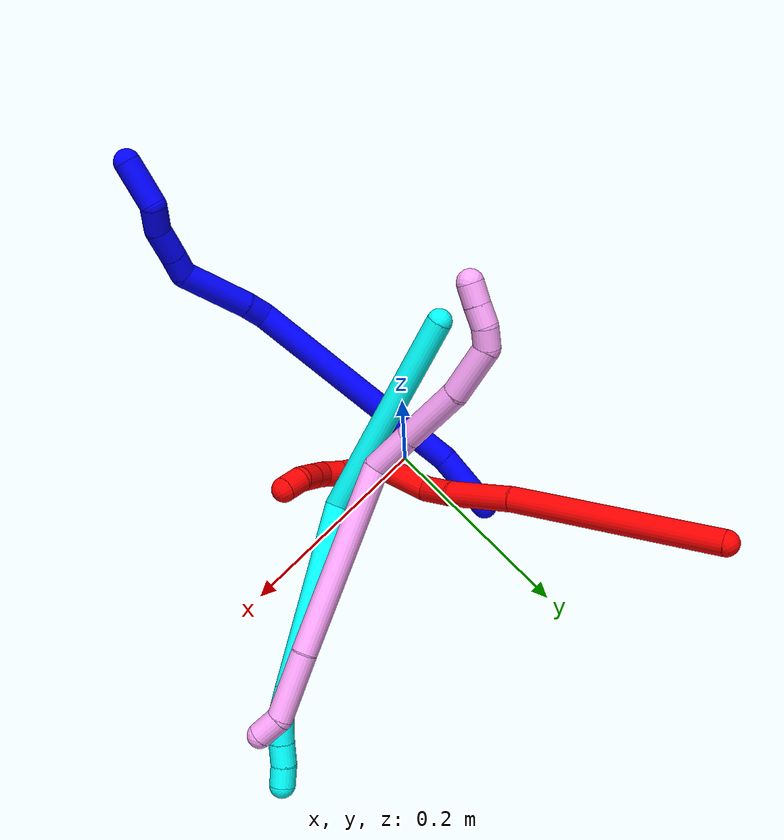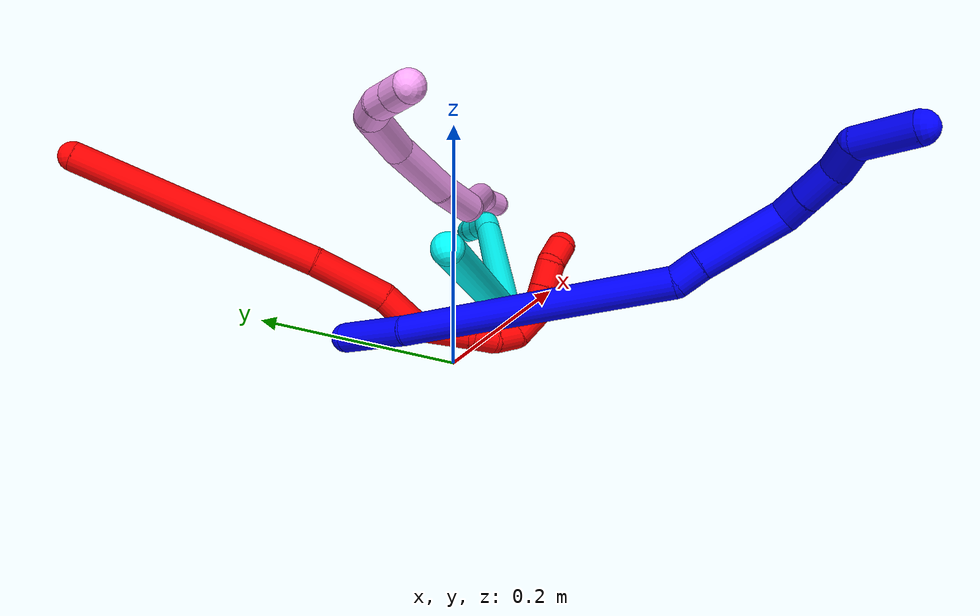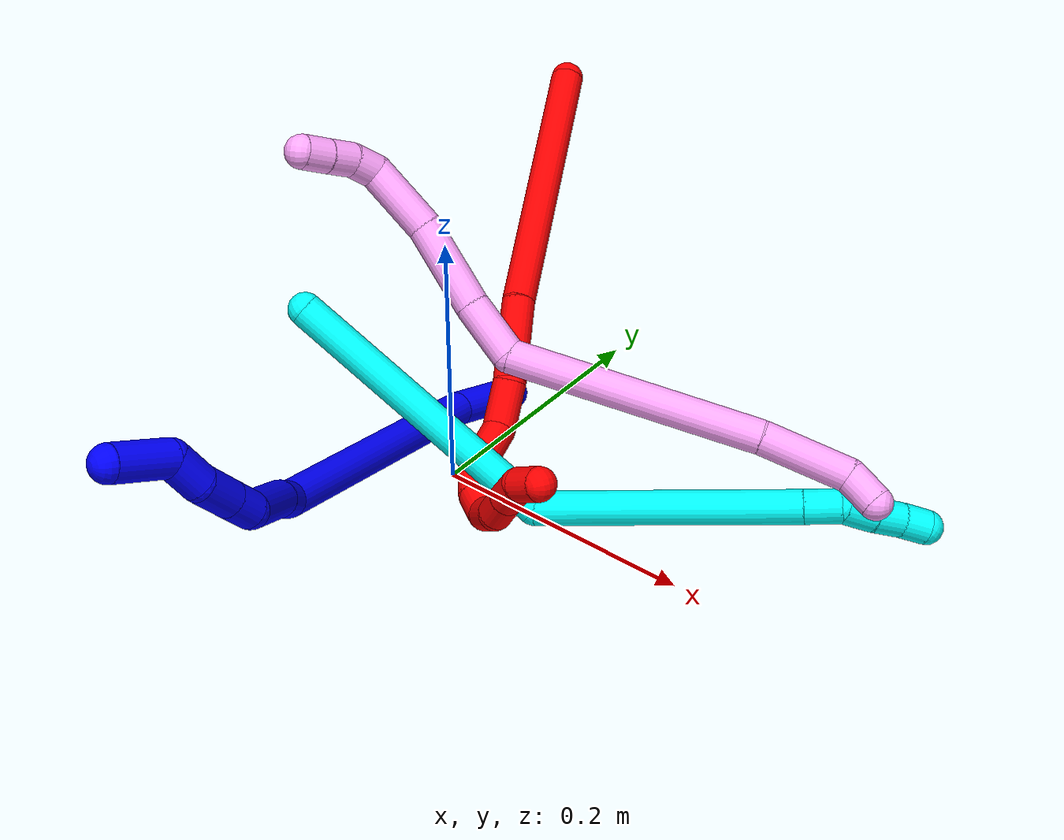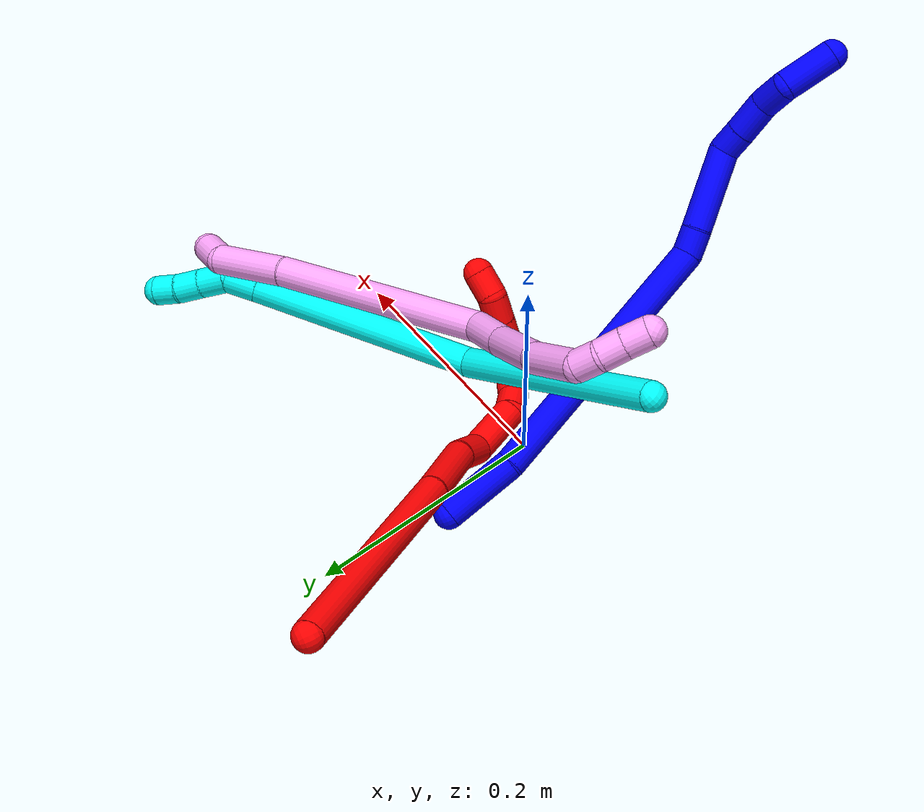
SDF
<sdf version="1.7">
 <world name="default">
  <plugin name="TubeGeneratorPlugin" filename="libtube_generator_plugin.so"/>
  <model name="photoneo_s_sensor">
   <static>1</static>
   <pose>0 0 2 1.57079 1.57079 3.14159</pose>
   <link name="link">
    <inertial><mass>0.1</mass></inertial>
    <sensor name="sensor" type="depth">
     <update_rate>30</update_rate>
     <camera>
      <horizontal_fov>1.22</horizontal_fov>
      <image><width>1920</width><height>1200</height><format>B8G8R8</format></image>
      <clip><near>0.1</near><far>4</far></clip>
      <depth_camera><output>points</output></depth_camera>
     </camera>
     <plugin name="camera_plugin" filename="libgazebo_ros_depth_camera.so">
      <baseline>0.2</baseline>
      <alwaysOn>1</alwaysOn>
      <updateRate>0.0</updateRate>
      <cameraName>camera_ir</cameraName>
      <imageTopicName>/camera/color/image_raw</imageTopicName>
      <cameraInfoTopicName>/camera/color/camera_info</cameraInfoTopicName>
      <depthImageTopicName>/camera/depth/image_raw</depthImageTopicName>
      <depthImageCameraInfoTopicName>/camera/depth/camera_info</depthImageCameraInfoTopicName>
      <pointCloudTopicName>/camera/depth/points</pointCloudTopicName>
      <frameName>fr_optical</frameName>
      <pointCloudCutoff>0.1</pointCloudCutoff>
      <pointCloudCutoffMax>2.0</pointCloudCutoffMax>
      <distortionK1>0</distortionK1>
      <distortionK2>0</distortionK2>
      <distortionK3>0</distortionK3>
      <distortionT1>0</distortionT1>
      <distortionT2>0</distortionT2>
      <CxPrime>0</CxPrime>
      <Cx>0</Cx>
      <Cy>0</Cy>
      <focalLength>0</focalLength>
      <hackBaseline>0</hackBaseline>
     </plugin>
    </sensor>
   </link>
  </model>
  <gravity>0 0 -9.8</gravity>
  <magnetic_field>6e-06 2.3e-05 -4.2e-05</magnetic_field>
  <atmosphere type="adiabatic"/>
  <physics name="default_physics" default="0" type="ode">
   <max_step_size>0.003</max_step_size>
   <real_time_factor>1</real_time_factor>
   <real_time_update_rate>1000</real_time_update_rate>
   <max_contacts>10000</max_contacts>
   <ode>
    <solver>
     <type>quick</type>
     <iters>100</iters>
     <sor>1.3</sor>
     <use_dynamic_moi_rescaling>0</use_dynamic_moi_rescaling>
    </solver>
    <constraints>
     <contact_max_correcting_vel>0</contact_max_correcting_vel>
     <contact_surface_layer>0.001</contact_surface_layer>
     <cfm>0</cfm>
     <erp>0.2</erp>
    </constraints>
   </ode>
  </physics>
  <scene><ambient>0.4 0.4 0.4 1</ambient><background>0.7 0.7 0.7 1</background><shadows>0</shadows></scene>
  <audio><device>default</device></audio>
  <spherical_coordinates>
   <surface_model>EARTH_WGS84</surface_model>
   <latitude_deg>0</latitude_deg>
   <longitude_deg>0</longitude_deg>
   <elevation>0</elevation>
   <heading_deg>0</heading_deg>
  </spherical_coordinates>
  <model name="bin">
   <static>1</static>
   <link name="bottom">
    <collision name="collision-bottom">
     <pose>0 0 -0.01 0 -0 0</pose>
     <geometry><box><size>0.8 0.6 0.02</size></box></geometry>
     <surface>
      <friction><ode><mu>100</mu><mu2>100</mu2></ode></friction>
      <contact><collide_bitmask>65535</collide_bitmask></contact>
     </surface>
    </collision>
   </link>
   <link name="west_wall">
    <collision name="collision-west_wall">
     <pose>-0.41 0 0.1 0 -0 0</pose>
     <geometry><box><size>0.02 0.6 0.2</size></box></geometry>
     <surface>
      <friction><ode><mu>100</mu><mu2>100</mu2></ode></friction>
      <contact><collide_bitmask>65535</collide_bitmask></contact>
     </surface>
    </collision>
   </link>
   <link name="east_wall">
    <collision name="collision-east_wall">
     <pose>0.41 0 0.1 0 -0 0</pose>
     <geometry><box><size>0.02 0.6 0.2</size></box></geometry>
     <surface>
      <friction><ode><mu>100</mu><mu2>100</mu2></ode></friction>
      <contact><collide_bitmask>65535</collide_bitmask></contact>
     </surface>
    </collision>
   </link>
   <link name="south_wall">
    <collision name="collision-south_wall">
     <pose>0 -0.31 0.1 0 -0 0</pose>
     <geometry><box><size>0.8 0.02 0.2</size></box></geometry>
     <surface>
      <friction><ode><mu>100</mu><mu2>100</mu2></ode></friction>
      <contact><collide_bitmask>65535</collide_bitmask></contact>
     </surface>
    </collision>
   </link>
   <link name="north_wall">
    <collision name="collision-north_wall">
     <pose>0 0.31 0.1 0 -0 0</pose>
     <geometry><box><size>0.8 0.02 0.2</size></box></geometry>
     <surface>
      <friction><ode><mu>100</mu><mu2>100</mu2></ode></friction>
      <contact><collide_bitmask>65535</collide_bitmask></contact>
     </surface>
    </collision>
   </link>
  </model>
  <model name="1">
   <static>0</static>
   <link name="1">
    <collision name="collision-cylinder-e_1_1_4">
     <pose>-0.000194 -0.005781 0.030669 0.186311 -0.006204 -0.00058</pose>
     <geometry><cylinder><radius>0.0125</radius><length>0.06242</length></cylinder></geometry>
     <surface>
      <friction><ode><mu>1.16</mu><mu2>1.16</mu2><slip1>0</slip1><slip2>0</slip2></ode></friction>
      <contact><ode><kp>1e+06</kp><kd>1</kd><max_vel>0</max_vel><min_depth>0.001</min_depth></ode></contact>
     </surface>
    </collision>
    <visual name="visual-cylinder-e_1_1_4">
     <pose>-0.000194 -0.005781 0.030669 0.186311 -0.006204 -0.00058</pose>
     <geometry><cylinder><radius>0.0125</radius><length>0.06242</length></cylinder></geometry>
     <material><ambient>0 0 1 1</ambient></material>
    </visual>
    <collision name="collision-cylinder-e_2_4_5">
     <pose>-0.007344 -0.05342 0.165954 0.380604 -0.061659 -0.011881</pose>
     <geometry><cylinder><radius>0.0125</radius><length>0.225786</length></cylinder></geometry>
     <surface>
      <friction><ode><mu>1.16</mu><mu2>1.16</mu2><slip1>0</slip1><slip2>0</slip2></ode></friction>
      <contact><ode><kp>1e+06</kp><kd>1</kd><max_vel>0</max_vel><min_depth>0.001</min_depth></ode></contact>
     </surface>
    </collision>
    <visual name="visual-cylinder-e_2_4_5">
     <pose>-0.007344 -0.05342 0.165954 0.380604 -0.061659 -0.011881</pose>
     <geometry><cylinder><radius>0.0125</radius><length>0.225786</length></cylinder></geometry>
     <material><ambient>0 0 1 1</ambient></material>
    </visual>
    <collision name="collision-cylinder-e_3_5_6">
     <pose>-0.011253 -0.101919 0.278722 0.683574 0.282046 0.100922</pose>
     <geometry><cylinder><radius>0.0125</radius><length>0.021896</length></cylinder></geometry>
     <surface>
      <friction><ode><mu>1.16</mu><mu2>1.16</mu2><slip1>0</slip1><slip2>0</slip2></ode></friction>
      <contact><ode><kp>1e+06</kp><kd>1</kd><max_vel>0</max_vel><min_depth>0.001</min_depth></ode></contact>
     </surface>
    </collision>
    <visual name="visual-cylinder-e_3_5_6">
     <pose>-0.011253 -0.101919 0.278722 0.683574 0.282046 0.100922</pose>
     <geometry><cylinder><radius>0.0125</radius><length>0.021896</length></cylinder></geometry>
     <material><ambient>0 0 1 1</ambient></material>
    </visual>
    <collision name="collision-cylinder-e_4_6_7">
     <pose>-0.002776 -0.130756 0.312224 0.719179 0.159786 0.060179</pose>
     <geometry><cylinder><radius>0.0125</radius><length>0.068256</length></cylinder></geometry>
     <surface>
      <friction><ode><mu>1.16</mu><mu2>1.16</mu2><slip1>0</slip1><slip2>0</slip2></ode></friction>
      <contact><ode><kp>1e+06</kp><kd>1</kd><max_vel>0</max_vel><min_depth>0.001</min_depth></ode></contact>
     </surface>
    </collision>
    <visual name="visual-cylinder-e_4_6_7">
     <pose>-0.002776 -0.130756 0.312224 0.719179 0.159786 0.060179</pose>
     <geometry><cylinder><radius>0.0125</radius><length>0.068256</length></cylinder></geometry>
     <material><ambient>0 0 1 1</ambient></material>
    </visual>
    <collision name="collision-cylinder-e_5_7_8">
     <pose>0.008326 -0.155018 0.346438 0.228936 0.557258 0.065756</pose>
     <geometry><cylinder><radius>0.0125</radius><length>0.021451</length></cylinder></geometry>
     <surface>
      <friction><ode><mu>1.16</mu><mu2>1.16</mu2><slip1>0</slip1><slip2>0</slip2></ode></friction>
      <contact><ode><kp>1e+06</kp><kd>1</kd><max_vel>0</max_vel><min_depth>0.001</min_depth></ode></contact>
     </surface>
    </collision>
    <visual name="visual-cylinder-e_5_7_8">
     <pose>0.008326 -0.155018 0.346438 0.228936 0.557258 0.065756</pose>
     <geometry><cylinder><radius>0.0125</radius><length>0.021451</length></cylinder></geometry>
     <material><ambient>0 0 1 1</ambient></material>
    </visual>
    <collision name="collision-cylinder-e_6_8_9">
     <pose>0.021828 -0.160481 0.367564 0.27029 0.551682 0.076939</pose>
     <geometry><cylinder><radius>0.0125</radius><length>0.029877</length></cylinder></geometry>
     <surface>
      <friction><ode><mu>1.16</mu><mu2>1.16</mu2><slip1>0</slip1><slip2>0</slip2></ode></friction>
      <contact><ode><kp>1e+06</kp><kd>1</kd><max_vel>0</max_vel><min_depth>0.001</min_depth></ode></contact>
     </surface>
    </collision>
    <visual name="visual-cylinder-e_6_8_9">
     <pose>0.021828 -0.160481 0.367564 0.27029 0.551682 0.076939</pose>
     <geometry><cylinder><radius>0.0125</radius><length>0.029877</length></cylinder></geometry>
     <material><ambient>0 0 1 1</ambient></material>
    </visual>
    <collision name="collision-cylinder-e_7_9_10">
     <pose>0.038973 -0.163461 0.389006 -0.04533 0.792123 -0.018958</pose>
     <geometry><cylinder><radius>0.0125</radius><length>0.026173</length></cylinder></geometry>
     <surface>
      <friction><ode><mu>1.16</mu><mu2>1.16</mu2><slip1>0</slip1><slip2>0</slip2></ode></friction>
      <contact><ode><kp>1e+06</kp><kd>1</kd><max_vel>0</max_vel><min_depth>0.001</min_depth></ode></contact>
     </surface>
    </collision>
    <visual name="visual-cylinder-e_7_9_10">
     <pose>0.038973 -0.163461 0.389006 -0.04533 0.792123 -0.018958</pose>
     <geometry><cylinder><radius>0.0125</radius><length>0.026173</length></cylinder></geometry>
     <material><ambient>0 0 1 1</ambient></material>
    </visual>
    <collision name="collision-cylinder-e_8_10_2">
     <pose>0.050753 -0.16436 0.420081 0.059981 0.111872 0.00336</pose>
     <geometry><cylinder><radius>0.0125</radius><length>0.044141</length></cylinder></geometry>
     <surface>
      <friction><ode><mu>1.16</mu><mu2>1.16</mu2><slip1>0</slip1><slip2>0</slip2></ode></friction>
      <contact><ode><kp>1e+06</kp><kd>1</kd><max_vel>0</max_vel><min_depth>0.001</min_depth></ode></contact>
     </surface>
    </collision>
    <visual name="visual-cylinder-e_8_10_2">
     <pose>0.050753 -0.16436 0.420081 0.059981 0.111872 0.00336</pose>
     <geometry><cylinder><radius>0.0125</radius><length>0.044141</length></cylinder></geometry>
     <material><ambient>0 0 1 1</ambient></material>
    </visual>
    <collision name="collision-sphere-2">
     <pose>0.053216 -0.165674 0.441974 0 -0 0</pose>
     <geometry><sphere><radius>0.0125</radius></sphere></geometry>
     <surface>
      <friction><ode><mu>1.16</mu><mu2>1.16</mu2><slip1>0</slip1><slip2>0</slip2></ode></friction>
      <contact><ode><kp>1e+06</kp><kd>1</kd><max_vel>0</max_vel><min_depth>0.001</min_depth></ode></contact>
     </surface>
    </collision>
    <visual name="visual-sphere-2">
     <pose>0.053216 -0.165674 0.441974 0 -0 0</pose>
     <geometry><sphere><radius>0.0125</radius></sphere></geometry>
     <material><ambient>0 0 1 1</ambient></material>
    </visual>
    <collision name="collision-sphere-10">
     <pose>0.048289 -0.163045 0.398187 0 -0 0</pose>
     <geometry><sphere><radius>0.0125</radius></sphere></geometry>
     <surface>
      <friction><ode><mu>1.16</mu><mu2>1.16</mu2><slip1>0</slip1><slip2>0</slip2></ode></friction>
      <contact><ode><kp>1e+06</kp><kd>1</kd><max_vel>0</max_vel><min_depth>0.001</min_depth></ode></contact>
     </surface>
    </collision>
    <visual name="visual-sphere-10">
     <pose>0.048289 -0.163045 0.398187 0 -0 0</pose>
     <geometry><sphere><radius>0.0125</radius></sphere></geometry>
     <material><ambient>0 0 1 1</ambient></material>
    </visual>
    <collision name="collision-sphere-9">
     <pose>0.029658 -0.163878 0.379824 0 -0 0</pose>
     <geometry><sphere><radius>0.0125</radius></sphere></geometry>
     <surface>
      <friction><ode><mu>1.16</mu><mu2>1.16</mu2><slip1>0</slip1><slip2>0</slip2></ode></friction>
      <contact><ode><kp>1e+06</kp><kd>1</kd><max_vel>0</max_vel><min_depth>0.001</min_depth></ode></contact>
     </surface>
    </collision>
    <visual name="visual-sphere-9">
     <pose>0.029658 -0.163878 0.379824 0 -0 0</pose>
     <geometry><sphere><radius>0.0125</radius></sphere></geometry>
     <material><ambient>0 0 1 1</ambient></material>
    </visual>
    <collision name="collision-sphere-4">
     <pose>-0.000387 -0.011562 0.061339 0 -0 0</pose>
     <geometry><sphere><radius>0.0125</radius></sphere></geometry>
     <surface>
      <friction><ode><mu>1.16</mu><mu2>1.16</mu2><slip1>0</slip1><slip2>0</slip2></ode></friction>
      <contact><ode><kp>1e+06</kp><kd>1</kd><max_vel>0</max_vel><min_depth>0.001</min_depth></ode></contact>
     </surface>
    </collision>
    <visual name="visual-sphere-4">
     <pose>-0.000387 -0.011562 0.061339 0 -0 0</pose>
     <geometry><sphere><radius>0.0125</radius></sphere></geometry>
     <material><ambient>0 0 1 1</ambient></material>
    </visual>
    <collision name="collision-sphere-1">
     <geometry><sphere><radius>0.0125</radius></sphere></geometry>
     <surface>
      <friction><ode><mu>1.16</mu><mu2>1.16</mu2><slip1>0</slip1><slip2>0</slip2></ode></friction>
      <contact><ode><kp>1e+06</kp><kd>1</kd><max_vel>0</max_vel><min_depth>0.001</min_depth></ode></contact>
     </surface>
    </collision>
    <visual name="visual-sphere-1">
     <geometry><sphere><radius>0.0125</radius></sphere></geometry>
     <material><ambient>0 0 1 1</ambient></material>
    </visual>
    <collision name="collision-sphere-8">
     <pose>0.013998 -0.157084 0.355303 0 -0 0</pose>
     <geometry><sphere><radius>0.0125</radius></sphere></geometry>
     <surface>
      <friction><ode><mu>1.16</mu><mu2>1.16</mu2><slip1>0</slip1><slip2>0</slip2></ode></friction>
      <contact><ode><kp>1e+06</kp><kd>1</kd><max_vel>0</max_vel><min_depth>0.001</min_depth></ode></contact>
     </surface>
    </collision>
    <visual name="visual-sphere-8">
     <pose>0.013998 -0.157084 0.355303 0 -0 0</pose>
     <geometry><sphere><radius>0.0125</radius></sphere></geometry>
     <material><ambient>0 0 1 1</ambient></material>
    </visual>
    <collision name="collision-sphere-5">
     <pose>-0.0143 -0.095278 0.270569 0 -0 0</pose>
     <geometry><sphere><radius>0.0125</radius></sphere></geometry>
     <surface>
      <friction><ode><mu>1.16</mu><mu2>1.16</mu2><slip1>0</slip1><slip2>0</slip2></ode></friction>
      <contact><ode><kp>1e+06</kp><kd>1</kd><max_vel>0</max_vel><min_depth>0.001</min_depth></ode></contact>
     </surface>
    </collision>
    <visual name="visual-sphere-5">
     <pose>-0.0143 -0.095278 0.270569 0 -0 0</pose>
     <geometry><sphere><radius>0.0125</radius></sphere></geometry>
     <material><ambient>0 0 1 1</ambient></material>
    </visual>
    <collision name="collision-sphere-6">
     <pose>-0.008206 -0.10856 0.286875 0 -0 0</pose>
     <geometry><sphere><radius>0.0125</radius></sphere></geometry>
     <surface>
      <friction><ode><mu>1.16</mu><mu2>1.16</mu2><slip1>0</slip1><slip2>0</slip2></ode></friction>
      <contact><ode><kp>1e+06</kp><kd>1</kd><max_vel>0</max_vel><min_depth>0.001</min_depth></ode></contact>
     </surface>
    </collision>
    <visual name="visual-sphere-6">
     <pose>-0.008206 -0.10856 0.286875 0 -0 0</pose>
     <geometry><sphere><radius>0.0125</radius></sphere></geometry>
     <material><ambient>0 0 1 1</ambient></material>
    </visual>
    <collision name="collision-sphere-7">
     <pose>0.002654 -0.152952 0.337573 0 -0 0</pose>
     <geometry><sphere><radius>0.0125</radius></sphere></geometry>
     <surface>
      <friction><ode><mu>1.16</mu><mu2>1.16</mu2><slip1>0</slip1><slip2>0</slip2></ode></friction>
      <contact><ode><kp>1e+06</kp><kd>1</kd><max_vel>0</max_vel><min_depth>0.001</min_depth></ode></contact>
     </surface>
    </collision>
    <visual name="visual-sphere-7">
     <pose>0.002654 -0.152952 0.337573 0 -0 0</pose>
     <geometry><sphere><radius>0.0125</radius></sphere></geometry>
     <material><ambient>0 0 1 1</ambient></material>
    </visual>
    <inertial>
     <pose>0.00397 -0.086464 0.227872 0 -0 0</pose>
     <mass>0.5</mass>
     <inertia>
      <ixx>0.001029</ixx>
      <ixy>0</ixy>
      <ixz>0</ixz>
      <iyy>0.000939</iyy>
      <iyz>0</iyz>
      <izz>0.000468</izz>
     </inertia>
    </inertial>
   </link>
   <pose>-0.020055 0.092773 0.011497 -0.897449 -1.15107 2.28168</pose>
  </model>
  <model name="2">
   <static>0</static>
   <link name="2">
    <collision name="collision-cylinder-e_1_1_4">
     <pose>0.04954 -0.06959 -0.063533 2.31073 0.484028 1.0204</pose>
     <geometry><cylinder><radius>0.0125</radius><length>0.212918</length></cylinder></geometry>
     <surface>
      <friction><ode><mu>1.16</mu><mu2>1.16</mu2><slip1>0</slip1><slip2>0</slip2></ode></friction>
      <contact><ode><kp>1e+06</kp><kd>1</kd><max_vel>0</max_vel><min_depth>0.001</min_depth></ode></contact>
     </surface>
    </collision>
    <visual name="visual-cylinder-e_1_1_4">
     <pose>0.04954 -0.06959 -0.063533 2.31073 0.484028 1.0204</pose>
     <geometry><cylinder><radius>0.0125</radius><length>0.212918</length></cylinder></geometry>
     <material><ambient>1 0 0 1</ambient></material>
    </visual>
    <collision name="collision-cylinder-e_2_4_5">
     <pose>0.116882 -0.162049 -0.143725 2.20031 0.561589 1.03143</pose>
     <geometry><cylinder><radius>0.0125</radius><length>0.066854</length></cylinder></geometry>
     <surface>
      <friction><ode><mu>1.16</mu><mu2>1.16</mu2><slip1>0</slip1><slip2>0</slip2></ode></friction>
      <contact><ode><kp>1e+06</kp><kd>1</kd><max_vel>0</max_vel><min_depth>0.001</min_depth></ode></contact>
     </surface>
    </collision>
    <visual name="visual-cylinder-e_2_4_5">
     <pose>0.116882 -0.162049 -0.143725 2.20031 0.561589 1.03143</pose>
     <geometry><cylinder><radius>0.0125</radius><length>0.066854</length></cylinder></geometry>
     <material><ambient>1 0 0 1</ambient></material>
    </visual>
    <collision name="collision-cylinder-e_3_5_6">
     <pose>0.148097 -0.194186 -0.169061 2.32341 0.81287 1.5635</pose>
     <geometry><cylinder><radius>0.0125</radius><length>0.036939</length></cylinder></geometry>
     <surface>
      <friction><ode><mu>1.16</mu><mu2>1.16</mu2><slip1>0</slip1><slip2>0</slip2></ode></friction>
      <contact><ode><kp>1e+06</kp><kd>1</kd><max_vel>0</max_vel><min_depth>0.001</min_depth></ode></contact>
     </surface>
    </collision>
    <visual name="visual-cylinder-e_3_5_6">
     <pose>0.148097 -0.194186 -0.169061 2.32341 0.81287 1.5635</pose>
     <geometry><cylinder><radius>0.0125</radius><length>0.036939</length></cylinder></geometry>
     <material><ambient>1 0 0 1</ambient></material>
    </visual>
    <collision name="collision-cylinder-e_4_6_7">
     <pose>0.165586 -0.216466 -0.197088 2.54954 0.173042 0.554159</pose>
     <geometry><cylinder><radius>0.0125</radius><length>0.047342</length></cylinder></geometry>
     <surface>
      <friction><ode><mu>1.16</mu><mu2>1.16</mu2><slip1>0</slip1><slip2>0</slip2></ode></friction>
      <contact><ode><kp>1e+06</kp><kd>1</kd><max_vel>0</max_vel><min_depth>0.001</min_depth></ode></contact>
     </surface>
    </collision>
    <visual name="visual-cylinder-e_4_6_7">
     <pose>0.165586 -0.216466 -0.197088 2.54954 0.173042 0.554159</pose>
     <geometry><cylinder><radius>0.0125</radius><length>0.047342</length></cylinder></geometry>
     <material><ambient>1 0 0 1</ambient></material>
    </visual>
    <collision name="collision-cylinder-e_5_7_8">
     <pose>0.172675 -0.238372 -0.221425 2.08196 0.287346 0.484336</pose>
     <geometry><cylinder><radius>0.0125</radius><length>0.021264</length></cylinder></geometry>
     <surface>
      <friction><ode><mu>1.16</mu><mu2>1.16</mu2><slip1>0</slip1><slip2>0</slip2></ode></friction>
      <contact><ode><kp>1e+06</kp><kd>1</kd><max_vel>0</max_vel><min_depth>0.001</min_depth></ode></contact>
     </surface>
    </collision>
    <visual name="visual-cylinder-e_5_7_8">
     <pose>0.172675 -0.238372 -0.221425 2.08196 0.287346 0.484336</pose>
     <geometry><cylinder><radius>0.0125</radius><length>0.021264</length></cylinder></geometry>
     <material><ambient>1 0 0 1</ambient></material>
    </visual>
    <collision name="collision-cylinder-e_6_8_9">
     <pose>0.175334 -0.257838 -0.229655 1.86831 -0.032022 -0.04331</pose>
     <geometry><cylinder><radius>0.0125</radius><length>0.02213</length></cylinder></geometry>
     <surface>
      <friction><ode><mu>1.16</mu><mu2>1.16</mu2><slip1>0</slip1><slip2>0</slip2></ode></friction>
      <contact><ode><kp>1e+06</kp><kd>1</kd><max_vel>0</max_vel><min_depth>0.001</min_depth></ode></contact>
     </surface>
    </collision>
    <visual name="visual-cylinder-e_6_8_9">
     <pose>0.175334 -0.257838 -0.229655 1.86831 -0.032022 -0.04331</pose>
     <geometry><cylinder><radius>0.0125</radius><length>0.02213</length></cylinder></geometry>
     <material><ambient>1 0 0 1</ambient></material>
    </visual>
    <collision name="collision-cylinder-e_7_9_10">
     <pose>0.166746 -0.277628 -0.236889 1.97956 -0.686707 -0.99718</pose>
     <geometry><cylinder><radius>0.0125</radius><length>0.025975</length></cylinder></geometry>
     <surface>
      <friction><ode><mu>1.16</mu><mu2>1.16</mu2><slip1>0</slip1><slip2>0</slip2></ode></friction>
      <contact><ode><kp>1e+06</kp><kd>1</kd><max_vel>0</max_vel><min_depth>0.001</min_depth></ode></contact>
     </surface>
    </collision>
    <visual name="visual-cylinder-e_7_9_10">
     <pose>0.166746 -0.277628 -0.236889 1.97956 -0.686707 -0.99718</pose>
     <geometry><cylinder><radius>0.0125</radius><length>0.025975</length></cylinder></geometry>
     <material><ambient>1 0 0 1</ambient></material>
    </visual>
    <collision name="collision-cylinder-e_8_10_11">
     <pose>0.148461 -0.291495 -0.241636 1.73171 -1.13242 -1.28332</pose>
     <geometry><cylinder><radius>0.0125</radius><length>0.022202</length></cylinder></geometry>
     <surface>
      <friction><ode><mu>1.16</mu><mu2>1.16</mu2><slip1>0</slip1><slip2>0</slip2></ode></friction>
      <contact><ode><kp>1e+06</kp><kd>1</kd><max_vel>0</max_vel><min_depth>0.001</min_depth></ode></contact>
     </surface>
    </collision>
    <visual name="visual-cylinder-e_8_10_11">
     <pose>0.148461 -0.291495 -0.241636 1.73171 -1.13242 -1.28332</pose>
     <geometry><cylinder><radius>0.0125</radius><length>0.022202</length></cylinder></geometry>
     <material><ambient>1 0 0 1</ambient></material>
    </visual>
    <collision name="collision-cylinder-e_9_11_12">
     <pose>0.128284 -0.301172 -0.243062 1.70362 -1.10655 -1.229</pose>
     <geometry><cylinder><radius>0.0125</radius><length>0.022647</length></cylinder></geometry>
     <surface>
      <friction><ode><mu>1.16</mu><mu2>1.16</mu2><slip1>0</slip1><slip2>0</slip2></ode></friction>
      <contact><ode><kp>1e+06</kp><kd>1</kd><max_vel>0</max_vel><min_depth>0.001</min_depth></ode></contact>
     </surface>
    </collision>
    <visual name="visual-cylinder-e_9_11_12">
     <pose>0.128284 -0.301172 -0.243062 1.70362 -1.10655 -1.229</pose>
     <geometry><cylinder><radius>0.0125</radius><length>0.022647</length></cylinder></geometry>
     <material><ambient>1 0 0 1</ambient></material>
    </visual>
    <collision name="collision-cylinder-e_10_12_2">
     <pose>0.111807 -0.314951 -0.242703 1.45355 -0.624468 -0.558984</pose>
     <geometry><cylinder><radius>0.0125</radius><length>0.021728</length></cylinder></geometry>
     <surface>
      <friction><ode><mu>1.16</mu><mu2>1.16</mu2><slip1>0</slip1><slip2>0</slip2></ode></friction>
      <contact><ode><kp>1e+06</kp><kd>1</kd><max_vel>0</max_vel><min_depth>0.001</min_depth></ode></contact>
     </surface>
    </collision>
    <visual name="visual-cylinder-e_10_12_2">
     <pose>0.111807 -0.314951 -0.242703 1.45355 -0.624468 -0.558984</pose>
     <geometry><cylinder><radius>0.0125</radius><length>0.021728</length></cylinder></geometry>
     <material><ambient>1 0 0 1</ambient></material>
    </visual>
    <collision name="collision-sphere-2">
     <pose>0.105455 -0.323704 -0.241672 0 -0 0</pose>
     <geometry><sphere><radius>0.0125</radius></sphere></geometry>
     <surface>
      <friction><ode><mu>1.16</mu><mu2>1.16</mu2><slip1>0</slip1><slip2>0</slip2></ode></friction>
      <contact><ode><kp>1e+06</kp><kd>1</kd><max_vel>0</max_vel><min_depth>0.001</min_depth></ode></contact>
     </surface>
    </collision>
    <visual name="visual-sphere-2">
     <pose>0.105455 -0.323704 -0.241672 0 -0 0</pose>
     <geometry><sphere><radius>0.0125</radius></sphere></geometry>
     <material><ambient>1 0 0 1</ambient></material>
    </visual>
    <collision name="collision-sphere-12">
     <pose>0.118159 -0.306197 -0.243734 0 -0 0</pose>
     <geometry><sphere><radius>0.0125</radius></sphere></geometry>
     <surface>
      <friction><ode><mu>1.16</mu><mu2>1.16</mu2><slip1>0</slip1><slip2>0</slip2></ode></friction>
      <contact><ode><kp>1e+06</kp><kd>1</kd><max_vel>0</max_vel><min_depth>0.001</min_depth></ode></contact>
     </surface>
    </collision>
    <visual name="visual-sphere-12">
     <pose>0.118159 -0.306197 -0.243734 0 -0 0</pose>
     <geometry><sphere><radius>0.0125</radius></sphere></geometry>
     <material><ambient>1 0 0 1</ambient></material>
    </visual>
    <collision name="collision-sphere-11">
     <pose>0.138409 -0.296146 -0.242391 0 -0 0</pose>
     <geometry><sphere><radius>0.0125</radius></sphere></geometry>
     <surface>
      <friction><ode><mu>1.16</mu><mu2>1.16</mu2><slip1>0</slip1><slip2>0</slip2></ode></friction>
      <contact><ode><kp>1e+06</kp><kd>1</kd><max_vel>0</max_vel><min_depth>0.001</min_depth></ode></contact>
     </surface>
    </collision>
    <visual name="visual-sphere-11">
     <pose>0.138409 -0.296146 -0.242391 0 -0 0</pose>
     <geometry><sphere><radius>0.0125</radius></sphere></geometry>
     <material><ambient>1 0 0 1</ambient></material>
    </visual>
    <collision name="collision-sphere-10">
     <pose>0.158512 -0.286844 -0.240881 0 -0 0</pose>
     <geometry><sphere><radius>0.0125</radius></sphere></geometry>
     <surface>
      <friction><ode><mu>1.16</mu><mu2>1.16</mu2><slip1>0</slip1><slip2>0</slip2></ode></friction>
      <contact><ode><kp>1e+06</kp><kd>1</kd><max_vel>0</max_vel><min_depth>0.001</min_depth></ode></contact>
     </surface>
    </collision>
    <visual name="visual-sphere-10">
     <pose>0.158512 -0.286844 -0.240881 0 -0 0</pose>
     <geometry><sphere><radius>0.0125</radius></sphere></geometry>
     <material><ambient>1 0 0 1</ambient></material>
    </visual>
    <collision name="collision-sphere-9">
     <pose>0.17498 -0.268412 -0.232897 0 -0 0</pose>
     <geometry><sphere><radius>0.0125</radius></sphere></geometry>
     <surface>
      <friction><ode><mu>1.16</mu><mu2>1.16</mu2><slip1>0</slip1><slip2>0</slip2></ode></friction>
      <contact><ode><kp>1e+06</kp><kd>1</kd><max_vel>0</max_vel><min_depth>0.001</min_depth></ode></contact>
     </surface>
    </collision>
    <visual name="visual-sphere-9">
     <pose>0.17498 -0.268412 -0.232897 0 -0 0</pose>
     <geometry><sphere><radius>0.0125</radius></sphere></geometry>
     <material><ambient>1 0 0 1</ambient></material>
    </visual>
    <collision name="collision-sphere-4">
     <pose>0.099081 -0.13918 -0.127067 0 -0 0</pose>
     <geometry><sphere><radius>0.0125</radius></sphere></geometry>
     <surface>
      <friction><ode><mu>1.16</mu><mu2>1.16</mu2><slip1>0</slip1><slip2>0</slip2></ode></friction>
      <contact><ode><kp>1e+06</kp><kd>1</kd><max_vel>0</max_vel><min_depth>0.001</min_depth></ode></contact>
     </surface>
    </collision>
    <visual name="visual-sphere-4">
     <pose>0.099081 -0.13918 -0.127067 0 -0 0</pose>
     <geometry><sphere><radius>0.0125</radius></sphere></geometry>
     <material><ambient>1 0 0 1</ambient></material>
    </visual>
    <collision name="collision-sphere-1">
     <geometry><sphere><radius>0.0125</radius></sphere></geometry>
     <surface>
      <friction><ode><mu>1.16</mu><mu2>1.16</mu2><slip1>0</slip1><slip2>0</slip2></ode></friction>
      <contact><ode><kp>1e+06</kp><kd>1</kd><max_vel>0</max_vel><min_depth>0.001</min_depth></ode></contact>
     </surface>
    </collision>
    <visual name="visual-sphere-1">
     <geometry><sphere><radius>0.0125</radius></sphere></geometry>
     <material><ambient>1 0 0 1</ambient></material>
    </visual>
    <collision name="collision-sphere-8">
     <pose>0.175688 -0.247265 -0.226413 0 -0 0</pose>
     <geometry><sphere><radius>0.0125</radius></sphere></geometry>
     <surface>
      <friction><ode><mu>1.16</mu><mu2>1.16</mu2><slip1>0</slip1><slip2>0</slip2></ode></friction>
      <contact><ode><kp>1e+06</kp><kd>1</kd><max_vel>0</max_vel><min_depth>0.001</min_depth></ode></contact>
     </surface>
    </collision>
    <visual name="visual-sphere-8">
     <pose>0.175688 -0.247265 -0.226413 0 -0 0</pose>
     <geometry><sphere><radius>0.0125</radius></sphere></geometry>
     <material><ambient>1 0 0 1</ambient></material>
    </visual>
    <collision name="collision-sphere-5">
     <pose>0.134683 -0.184919 -0.160382 0 -0 0</pose>
     <geometry><sphere><radius>0.0125</radius></sphere></geometry>
     <surface>
      <friction><ode><mu>1.16</mu><mu2>1.16</mu2><slip1>0</slip1><slip2>0</slip2></ode></friction>
      <contact><ode><kp>1e+06</kp><kd>1</kd><max_vel>0</max_vel><min_depth>0.001</min_depth></ode></contact>
     </surface>
    </collision>
    <visual name="visual-sphere-5">
     <pose>0.134683 -0.184919 -0.160382 0 -0 0</pose>
     <geometry><sphere><radius>0.0125</radius></sphere></geometry>
     <material><ambient>1 0 0 1</ambient></material>
    </visual>
    <collision name="collision-sphere-6">
     <pose>0.16151 -0.203453 -0.177739 0 -0 0</pose>
     <geometry><sphere><radius>0.0125</radius></sphere></geometry>
     <surface>
      <friction><ode><mu>1.16</mu><mu2>1.16</mu2><slip1>0</slip1><slip2>0</slip2></ode></friction>
      <contact><ode><kp>1e+06</kp><kd>1</kd><max_vel>0</max_vel><min_depth>0.001</min_depth></ode></contact>
     </surface>
    </collision>
    <visual name="visual-sphere-6">
     <pose>0.16151 -0.203453 -0.177739 0 -0 0</pose>
     <geometry><sphere><radius>0.0125</radius></sphere></geometry>
     <material><ambient>1 0 0 1</ambient></material>
    </visual>
    <collision name="collision-sphere-7">
     <pose>0.169662 -0.229479 -0.216437 0 -0 0</pose>
     <geometry><sphere><radius>0.0125</radius></sphere></geometry>
     <surface>
      <friction><ode><mu>1.16</mu><mu2>1.16</mu2><slip1>0</slip1><slip2>0</slip2></ode></friction>
      <contact><ode><kp>1e+06</kp><kd>1</kd><max_vel>0</max_vel><min_depth>0.001</min_depth></ode></contact>
     </surface>
    </collision>
    <visual name="visual-sphere-7">
     <pose>0.169662 -0.229479 -0.216437 0 -0 0</pose>
     <geometry><sphere><radius>0.0125</radius></sphere></geometry>
     <material><ambient>1 0 0 1</ambient></material>
    </visual>
    <inertial>
     <pose>0.104372 -0.162387 -0.141597 0 -0 0</pose>
     <mass>0.5</mass>
     <inertia>
      <ixx>0.001051</ixx>
      <ixy>0</ixy>
      <ixz>0</ixz>
      <iyy>0.000567</iyy>
      <iyz>0</iyz>
      <izz>0.000154</izz>
     </inertia>
    </inertial>
   </link>
   <pose>-0.118263 0.288503 0.167276 2.66186 1.37629 -2.31905</pose>
  </model>
  <model name="3">
   <static>0</static>
   <link name="3">
    <collision name="collision-cylinder-e_1_1_4">
     <pose>0.094793 0.048131 0.017909 -1.21457 1.0743 -0.784775</pose>
     <geometry><cylinder><radius>0.0125</radius><length>0.215621</length></cylinder></geometry>
     <surface>
      <friction><ode><mu>1.16</mu><mu2>1.16</mu2><slip1>0</slip1><slip2>0</slip2></ode></friction>
      <contact><ode><kp>1e+06</kp><kd>1</kd><max_vel>0</max_vel><min_depth>0.001</min_depth></ode></contact>
     </surface>
    </collision>
    <visual name="visual-cylinder-e_1_1_4">
     <pose>0.094793 0.048131 0.017909 -1.21457 1.0743 -0.784775</pose>
     <geometry><cylinder><radius>0.0125</radius><length>0.215621</length></cylinder></geometry>
     <material><ambient>0.003922 1 0.996078 1</ambient></material>
    </visual>
    <collision name="collision-cylinder-e_2_4_5">
     <pose>0.23525 0.136207 0.109072 -0.499218 0.500765 -0.13021</pose>
     <geometry><cylinder><radius>0.0125</radius><length>0.190227</length></cylinder></geometry>
     <surface>
      <friction><ode><mu>1.16</mu><mu2>1.16</mu2><slip1>0</slip1><slip2>0</slip2></ode></friction>
      <contact><ode><kp>1e+06</kp><kd>1</kd><max_vel>0</max_vel><min_depth>0.001</min_depth></ode></contact>
     </surface>
    </collision>
    <visual name="visual-cylinder-e_2_4_5">
     <pose>0.23525 0.136207 0.109072 -0.499218 0.500765 -0.13021</pose>
     <geometry><cylinder><radius>0.0125</radius><length>0.190227</length></cylinder></geometry>
     <material><ambient>0.003922 1 0.996078 1</ambient></material>
    </visual>
    <collision name="collision-cylinder-e_3_5_6">
     <pose>0.287103 0.182011 0.192704 -0.513993 0.478929 -0.128153</pose>
     <geometry><cylinder><radius>0.0125</radius><length>0.026863</length></cylinder></geometry>
     <surface>
      <friction><ode><mu>1.16</mu><mu2>1.16</mu2><slip1>0</slip1><slip2>0</slip2></ode></friction>
      <contact><ode><kp>1e+06</kp><kd>1</kd><max_vel>0</max_vel><min_depth>0.001</min_depth></ode></contact>
     </surface>
    </collision>
    <visual name="visual-cylinder-e_3_5_6">
     <pose>0.287103 0.182011 0.192704 -0.513993 0.478929 -0.128153</pose>
     <geometry><cylinder><radius>0.0125</radius><length>0.026863</length></cylinder></geometry>
     <material><ambient>0.003922 1 0.996078 1</ambient></material>
    </visual>
    <collision name="collision-cylinder-e_4_6_7">
     <pose>0.299608 0.19759 0.207134 -1.17595 0.540276 -0.365079</pose>
     <geometry><cylinder><radius>0.0125</radius><length>0.024555</length></cylinder></geometry>
     <surface>
      <friction><ode><mu>1.16</mu><mu2>1.16</mu2><slip1>0</slip1><slip2>0</slip2></ode></friction>
      <contact><ode><kp>1e+06</kp><kd>1</kd><max_vel>0</max_vel><min_depth>0.001</min_depth></ode></contact>
     </surface>
    </collision>
    <visual name="visual-cylinder-e_4_6_7">
     <pose>0.299608 0.19759 0.207134 -1.17595 0.540276 -0.365079</pose>
     <geometry><cylinder><radius>0.0125</radius><length>0.024555</length></cylinder></geometry>
     <material><ambient>0.003922 1 0.996078 1</ambient></material>
    </visual>
    <collision name="collision-cylinder-e_5_7_8">
     <pose>0.310816 0.216536 0.215425 -1.13996 0.448988 -0.290644</pose>
     <geometry><cylinder><radius>0.0125</radius><length>0.022545</length></cylinder></geometry>
     <surface>
      <friction><ode><mu>1.16</mu><mu2>1.16</mu2><slip1>0</slip1><slip2>0</slip2></ode></friction>
      <contact><ode><kp>1e+06</kp><kd>1</kd><max_vel>0</max_vel><min_depth>0.001</min_depth></ode></contact>
     </surface>
    </collision>
    <visual name="visual-cylinder-e_5_7_8">
     <pose>0.310816 0.216536 0.215425 -1.13996 0.448988 -0.290644</pose>
     <geometry><cylinder><radius>0.0125</radius><length>0.022545</length></cylinder></geometry>
     <material><ambient>0.003922 1 0.996078 1</ambient></material>
    </visual>
    <collision name="collision-cylinder-e_6_8_2">
     <pose>0.321404 0.233036 0.223737 -1.06052 0.599491 -0.358491</pose>
     <geometry><cylinder><radius>0.0125</radius><length>0.020189</length></cylinder></geometry>
     <surface>
      <friction><ode><mu>1.16</mu><mu2>1.16</mu2><slip1>0</slip1><slip2>0</slip2></ode></friction>
      <contact><ode><kp>1e+06</kp><kd>1</kd><max_vel>0</max_vel><min_depth>0.001</min_depth></ode></contact>
     </surface>
    </collision>
    <visual name="visual-cylinder-e_6_8_2">
     <pose>0.321404 0.233036 0.223737 -1.06052 0.599491 -0.358491</pose>
     <geometry><cylinder><radius>0.0125</radius><length>0.020189</length></cylinder></geometry>
     <material><ambient>0.003922 1 0.996078 1</ambient></material>
    </visual>
    <collision name="collision-sphere-2">
     <pose>0.3271 0.240308 0.227808 0 -0 0</pose>
     <geometry><sphere><radius>0.0125</radius></sphere></geometry>
     <surface>
      <friction><ode><mu>1.16</mu><mu2>1.16</mu2><slip1>0</slip1><slip2>0</slip2></ode></friction>
      <contact><ode><kp>1e+06</kp><kd>1</kd><max_vel>0</max_vel><min_depth>0.001</min_depth></ode></contact>
     </surface>
    </collision>
    <visual name="visual-sphere-2">
     <pose>0.3271 0.240308 0.227808 0 -0 0</pose>
     <geometry><sphere><radius>0.0125</radius></sphere></geometry>
     <material><ambient>0.003922 1 0.996078 1</ambient></material>
    </visual>
    <collision name="collision-sphere-4">
     <pose>0.189586 0.096263 0.035819 0 -0 0</pose>
     <geometry><sphere><radius>0.0125</radius></sphere></geometry>
     <surface>
      <friction><ode><mu>1.16</mu><mu2>1.16</mu2><slip1>0</slip1><slip2>0</slip2></ode></friction>
      <contact><ode><kp>1e+06</kp><kd>1</kd><max_vel>0</max_vel><min_depth>0.001</min_depth></ode></contact>
     </surface>
    </collision>
    <visual name="visual-sphere-4">
     <pose>0.189586 0.096263 0.035819 0 -0 0</pose>
     <geometry><sphere><radius>0.0125</radius></sphere></geometry>
     <material><ambient>0.003922 1 0.996078 1</ambient></material>
    </visual>
    <collision name="collision-sphere-1">
     <geometry><sphere><radius>0.0125</radius></sphere></geometry>
     <surface>
      <friction><ode><mu>1.16</mu><mu2>1.16</mu2><slip1>0</slip1><slip2>0</slip2></ode></friction>
      <contact><ode><kp>1e+06</kp><kd>1</kd><max_vel>0</max_vel><min_depth>0.001</min_depth></ode></contact>
     </surface>
    </collision>
    <visual name="visual-sphere-1">
     <geometry><sphere><radius>0.0125</radius></sphere></geometry>
     <material><ambient>0.003922 1 0.996078 1</ambient></material>
    </visual>
    <collision name="collision-sphere-8">
     <pose>0.315709 0.225764 0.219667 0 -0 0</pose>
     <geometry><sphere><radius>0.0125</radius></sphere></geometry>
     <surface>
      <friction><ode><mu>1.16</mu><mu2>1.16</mu2><slip1>0</slip1><slip2>0</slip2></ode></friction>
      <contact><ode><kp>1e+06</kp><kd>1</kd><max_vel>0</max_vel><min_depth>0.001</min_depth></ode></contact>
     </surface>
    </collision>
    <visual name="visual-sphere-8">
     <pose>0.315709 0.225764 0.219667 0 -0 0</pose>
     <geometry><sphere><radius>0.0125</radius></sphere></geometry>
     <material><ambient>0.003922 1 0.996078 1</ambient></material>
    </visual>
    <collision name="collision-sphere-5">
     <pose>0.280914 0.17615 0.182324 0 -0 0</pose>
     <geometry><sphere><radius>0.0125</radius></sphere></geometry>
     <surface>
      <friction><ode><mu>1.16</mu><mu2>1.16</mu2><slip1>0</slip1><slip2>0</slip2></ode></friction>
      <contact><ode><kp>1e+06</kp><kd>1</kd><max_vel>0</max_vel><min_depth>0.001</min_depth></ode></contact>
     </surface>
    </collision>
    <visual name="visual-sphere-5">
     <pose>0.280914 0.17615 0.182324 0 -0 0</pose>
     <geometry><sphere><radius>0.0125</radius></sphere></geometry>
     <material><ambient>0.003922 1 0.996078 1</ambient></material>
    </visual>
    <collision name="collision-sphere-6">
     <pose>0.293293 0.187872 0.203084 0 -0 0</pose>
     <geometry><sphere><radius>0.0125</radius></sphere></geometry>
     <surface>
      <friction><ode><mu>1.16</mu><mu2>1.16</mu2><slip1>0</slip1><slip2>0</slip2></ode></friction>
      <contact><ode><kp>1e+06</kp><kd>1</kd><max_vel>0</max_vel><min_depth>0.001</min_depth></ode></contact>
     </surface>
    </collision>
    <visual name="visual-sphere-6">
     <pose>0.293293 0.187872 0.203084 0 -0 0</pose>
     <geometry><sphere><radius>0.0125</radius></sphere></geometry>
     <material><ambient>0.003922 1 0.996078 1</ambient></material>
    </visual>
    <collision name="collision-sphere-7">
     <pose>0.305923 0.207309 0.211184 0 -0 0</pose>
     <geometry><sphere><radius>0.0125</radius></sphere></geometry>
     <surface>
      <friction><ode><mu>1.16</mu><mu2>1.16</mu2><slip1>0</slip1><slip2>0</slip2></ode></friction>
      <contact><ode><kp>1e+06</kp><kd>1</kd><max_vel>0</max_vel><min_depth>0.001</min_depth></ode></contact>
     </surface>
    </collision>
    <visual name="visual-sphere-7">
     <pose>0.305923 0.207309 0.211184 0 -0 0</pose>
     <geometry><sphere><radius>0.0125</radius></sphere></geometry>
     <material><ambient>0.003922 1 0.996078 1</ambient></material>
    </visual>
    <inertial>
     <pose>0.187511 0.111232 0.088493 0 -0 0</pose>
     <mass>0.5</mass>
     <inertia>
      <ixx>0.00047</ixx>
      <ixy>0</ixy>
      <ixz>0</ixz>
      <iyy>0.000895</iyy>
      <iyz>0</iyz>
      <izz>-0.001633</izz>
     </inertia>
    </inertial>
   </link>
   <pose>-0.093596 -0.046346 0.132602 -0.632644 0.502506 -0.369221</pose>
  </model>
  <model name="4">
   <static>0</static>
   <link name="4">
    <collision name="collision-cylinder-e_1_1_4">
     <pose>-0.007946 0.002587 -0.010047 -2.88958 -0.653647 2.42633</pose>
     <geometry><cylinder><radius>0.0125</radius><length>0.026136</length></cylinder></geometry>
     <surface>
      <friction><ode><mu>1.16</mu><mu2>1.16</mu2><slip1>0</slip1><slip2>0</slip2></ode></friction>
      <contact><ode><kp>1e+06</kp><kd>1</kd><max_vel>0</max_vel><min_depth>0.001</min_depth></ode></contact>
     </surface>
    </collision>
    <visual name="visual-cylinder-e_1_1_4">
     <pose>-0.007946 0.002587 -0.010047 -2.88958 -0.653647 2.42633</pose>
     <geometry><cylinder><radius>0.0125</radius><length>0.026136</length></cylinder></geometry>
     <material><ambient>1 0.65098 0.996078 1</ambient></material>
    </visual>
    <collision name="collision-cylinder-e_2_4_5">
     <pose>-0.02648 -0.000768 -0.051003 2.95169 -0.324471 -2.08761</pose>
     <geometry><cylinder><radius>0.0125</radius><length>0.066418</length></cylinder></geometry>
     <surface>
      <friction><ode><mu>1.16</mu><mu2>1.16</mu2><slip1>0</slip1><slip2>0</slip2></ode></friction>
      <contact><ode><kp>1e+06</kp><kd>1</kd><max_vel>0</max_vel><min_depth>0.001</min_depth></ode></contact>
     </surface>
    </collision>
    <visual name="visual-cylinder-e_2_4_5">
     <pose>-0.02648 -0.000768 -0.051003 2.95169 -0.324471 -2.08761</pose>
     <geometry><cylinder><radius>0.0125</radius><length>0.066418</length></cylinder></geometry>
     <material><ambient>1 0.65098 0.996078 1</ambient></material>
    </visual>
    <collision name="collision-cylinder-e_3_5_6">
     <pose>-0.056986 -0.018393 -0.170986 3.01117 -0.218196 -2.06635</pose>
     <geometry><cylinder><radius>0.0125</radius><length>0.184034</length></cylinder></geometry>
     <surface>
      <friction><ode><mu>1.16</mu><mu2>1.16</mu2><slip1>0</slip1><slip2>0</slip2></ode></friction>
      <contact><ode><kp>1e+06</kp><kd>1</kd><max_vel>0</max_vel><min_depth>0.001</min_depth></ode></contact>
     </surface>
    </collision>
    <visual name="visual-cylinder-e_3_5_6">
     <pose>-0.056986 -0.018393 -0.170986 3.01117 -0.218196 -2.06635</pose>
     <geometry><cylinder><radius>0.0125</radius><length>0.184034</length></cylinder></geometry>
     <material><ambient>1 0.65098 0.996078 1</ambient></material>
    </visual>
    <collision name="collision-cylinder-e_4_6_7">
     <pose>-0.092747 -0.027622 -0.275499 -2.98398 -0.791998 2.76823</pose>
     <geometry><cylinder><radius>0.0125</radius><length>0.044516</length></cylinder></geometry>
     <surface>
      <friction><ode><mu>1.16</mu><mu2>1.16</mu2><slip1>0</slip1><slip2>0</slip2></ode></friction>
      <contact><ode><kp>1e+06</kp><kd>1</kd><max_vel>0</max_vel><min_depth>0.001</min_depth></ode></contact>
     </surface>
    </collision>
    <visual name="visual-cylinder-e_4_6_7">
     <pose>-0.092747 -0.027622 -0.275499 -2.98398 -0.791998 2.76823</pose>
     <geometry><cylinder><radius>0.0125</radius><length>0.044516</length></cylinder></geometry>
     <material><ambient>1 0.65098 0.996078 1</ambient></material>
    </visual>
    <collision name="collision-cylinder-e_5_7_8">
     <pose>-0.134368 -0.022968 -0.311187 -3.03335 -0.902166 2.91885</pose>
     <geometry><cylinder><radius>0.0125</radius><length>0.065706</length></cylinder></geometry>
     <surface>
      <friction><ode><mu>1.16</mu><mu2>1.16</mu2><slip1>0</slip1><slip2>0</slip2></ode></friction>
      <contact><ode><kp>1e+06</kp><kd>1</kd><max_vel>0</max_vel><min_depth>0.001</min_depth></ode></contact>
     </surface>
    </collision>
    <visual name="visual-cylinder-e_5_7_8">
     <pose>-0.134368 -0.022968 -0.311187 -3.03335 -0.902166 2.91885</pose>
     <geometry><cylinder><radius>0.0125</radius><length>0.065706</length></cylinder></geometry>
     <material><ambient>1 0.65098 0.996078 1</ambient></material>
    </visual>
    <collision name="collision-cylinder-e_6_8_9">
     <pose>-0.178222 -0.02302 -0.350526 3.02419 -0.754566 -2.84712</pose>
     <geometry><cylinder><radius>0.0125</radius><length>0.052774</length></cylinder></geometry>
     <surface>
      <friction><ode><mu>1.16</mu><mu2>1.16</mu2><slip1>0</slip1><slip2>0</slip2></ode></friction>
      <contact><ode><kp>1e+06</kp><kd>1</kd><max_vel>0</max_vel><min_depth>0.001</min_depth></ode></contact>
     </surface>
    </collision>
    <visual name="visual-cylinder-e_6_8_9">
     <pose>-0.178222 -0.02302 -0.350526 3.02419 -0.754566 -2.84712</pose>
     <geometry><cylinder><radius>0.0125</radius><length>0.052774</length></cylinder></geometry>
     <material><ambient>1 0.65098 0.996078 1</ambient></material>
    </visual>
    <collision name="collision-cylinder-e_7_9_10">
     <pose>-0.199856 -0.031889 -0.376281 2.35958 -0.362302 -0.836226</pose>
     <geometry><cylinder><radius>0.0125</radius><length>0.020085</length></cylinder></geometry>
     <surface>
      <friction><ode><mu>1.16</mu><mu2>1.16</mu2><slip1>0</slip1><slip2>0</slip2></ode></friction>
      <contact><ode><kp>1e+06</kp><kd>1</kd><max_vel>0</max_vel><min_depth>0.001</min_depth></ode></contact>
     </surface>
    </collision>
    <visual name="visual-cylinder-e_7_9_10">
     <pose>-0.199856 -0.031889 -0.376281 2.35958 -0.362302 -0.836226</pose>
     <geometry><cylinder><radius>0.0125</radius><length>0.020085</length></cylinder></geometry>
     <material><ambient>1 0.65098 0.996078 1</ambient></material>
    </visual>
    <collision name="collision-cylinder-e_8_10_11">
     <pose>-0.204312 -0.046275 -0.389254 2.25304 -0.089387 -0.187356</pose>
     <geometry><cylinder><radius>0.0125</radius><length>0.020097</length></cylinder></geometry>
     <surface>
      <friction><ode><mu>1.16</mu><mu2>1.16</mu2><slip1>0</slip1><slip2>0</slip2></ode></friction>
      <contact><ode><kp>1e+06</kp><kd>1</kd><max_vel>0</max_vel><min_depth>0.001</min_depth></ode></contact>
     </surface>
    </collision>
    <visual name="visual-cylinder-e_8_10_11">
     <pose>-0.204312 -0.046275 -0.389254 2.25304 -0.089387 -0.187356</pose>
     <geometry><cylinder><radius>0.0125</radius><length>0.020097</length></cylinder></geometry>
     <material><ambient>1 0.65098 0.996078 1</ambient></material>
    </visual>
    <collision name="collision-cylinder-e_9_11_2">
     <pose>-0.206234 -0.061567 -0.40225 2.2972 -0.101456 -0.225094</pose>
     <geometry><cylinder><radius>0.0125</radius><length>0.020234</length></cylinder></geometry>
     <surface>
      <friction><ode><mu>1.16</mu><mu2>1.16</mu2><slip1>0</slip1><slip2>0</slip2></ode></friction>
      <contact><ode><kp>1e+06</kp><kd>1</kd><max_vel>0</max_vel><min_depth>0.001</min_depth></ode></contact>
     </surface>
    </collision>
    <visual name="visual-cylinder-e_9_11_2">
     <pose>-0.206234 -0.061567 -0.40225 2.2972 -0.101456 -0.225094</pose>
     <geometry><cylinder><radius>0.0125</radius><length>0.020234</length></cylinder></geometry>
     <material><ambient>1 0.65098 0.996078 1</ambient></material>
    </visual>
    <collision name="collision-sphere-2">
     <pose>-0.207258 -0.069092 -0.408935 0 -0 0</pose>
     <geometry><sphere><radius>0.0125</radius></sphere></geometry>
     <surface>
      <friction><ode><mu>1.16</mu><mu2>1.16</mu2><slip1>0</slip1><slip2>0</slip2></ode></friction>
      <contact><ode><kp>1e+06</kp><kd>1</kd><max_vel>0</max_vel><min_depth>0.001</min_depth></ode></contact>
     </surface>
    </collision>
    <visual name="visual-sphere-2">
     <pose>-0.207258 -0.069092 -0.408935 0 -0 0</pose>
     <geometry><sphere><radius>0.0125</radius></sphere></geometry>
     <material><ambient>1 0.65098 0.996078 1</ambient></material>
    </visual>
    <collision name="collision-sphere-11">
     <pose>-0.205209 -0.054043 -0.395565 0 -0 0</pose>
     <geometry><sphere><radius>0.0125</radius></sphere></geometry>
     <surface>
      <friction><ode><mu>1.16</mu><mu2>1.16</mu2><slip1>0</slip1><slip2>0</slip2></ode></friction>
      <contact><ode><kp>1e+06</kp><kd>1</kd><max_vel>0</max_vel><min_depth>0.001</min_depth></ode></contact>
     </surface>
    </collision>
    <visual name="visual-sphere-11">
     <pose>-0.205209 -0.054043 -0.395565 0 -0 0</pose>
     <geometry><sphere><radius>0.0125</radius></sphere></geometry>
     <material><ambient>1 0.65098 0.996078 1</ambient></material>
    </visual>
    <collision name="collision-sphere-10">
     <pose>-0.203415 -0.038507 -0.382944 0 -0 0</pose>
     <geometry><sphere><radius>0.0125</radius></sphere></geometry>
     <surface>
      <friction><ode><mu>1.16</mu><mu2>1.16</mu2><slip1>0</slip1><slip2>0</slip2></ode></friction>
      <contact><ode><kp>1e+06</kp><kd>1</kd><max_vel>0</max_vel><min_depth>0.001</min_depth></ode></contact>
     </surface>
    </collision>
    <visual name="visual-sphere-10">
     <pose>-0.203415 -0.038507 -0.382944 0 -0 0</pose>
     <geometry><sphere><radius>0.0125</radius></sphere></geometry>
     <material><ambient>1 0.65098 0.996078 1</ambient></material>
    </visual>
    <collision name="collision-sphere-9">
     <pose>-0.196296 -0.025272 -0.369619 0 -0 0</pose>
     <geometry><sphere><radius>0.0125</radius></sphere></geometry>
     <surface>
      <friction><ode><mu>1.16</mu><mu2>1.16</mu2><slip1>0</slip1><slip2>0</slip2></ode></friction>
      <contact><ode><kp>1e+06</kp><kd>1</kd><max_vel>0</max_vel><min_depth>0.001</min_depth></ode></contact>
     </surface>
    </collision>
    <visual name="visual-sphere-9">
     <pose>-0.196296 -0.025272 -0.369619 0 -0 0</pose>
     <geometry><sphere><radius>0.0125</radius></sphere></geometry>
     <material><ambient>1 0.65098 0.996078 1</ambient></material>
    </visual>
    <collision name="collision-sphere-4">
     <pose>-0.015893 0.005174 -0.020093 0 -0 0</pose>
     <geometry><sphere><radius>0.0125</radius></sphere></geometry>
     <surface>
      <friction><ode><mu>1.16</mu><mu2>1.16</mu2><slip1>0</slip1><slip2>0</slip2></ode></friction>
      <contact><ode><kp>1e+06</kp><kd>1</kd><max_vel>0</max_vel><min_depth>0.001</min_depth></ode></contact>
     </surface>
    </collision>
    <visual name="visual-sphere-4">
     <pose>-0.015893 0.005174 -0.020093 0 -0 0</pose>
     <geometry><sphere><radius>0.0125</radius></sphere></geometry>
     <material><ambient>1 0.65098 0.996078 1</ambient></material>
    </visual>
    <collision name="collision-sphere-1">
     <geometry><sphere><radius>0.0125</radius></sphere></geometry>
     <surface>
      <friction><ode><mu>1.16</mu><mu2>1.16</mu2><slip1>0</slip1><slip2>0</slip2></ode></friction>
      <contact><ode><kp>1e+06</kp><kd>1</kd><max_vel>0</max_vel><min_depth>0.001</min_depth></ode></contact>
     </surface>
    </collision>
    <visual name="visual-sphere-1">
     <geometry><sphere><radius>0.0125</radius></sphere></geometry>
     <material><ambient>1 0.65098 0.996078 1</ambient></material>
    </visual>
    <collision name="collision-sphere-8">
     <pose>-0.160147 -0.020768 -0.331433 0 -0 0</pose>
     <geometry><sphere><radius>0.0125</radius></sphere></geometry>
     <surface>
      <friction><ode><mu>1.16</mu><mu2>1.16</mu2><slip1>0</slip1><slip2>0</slip2></ode></friction>
      <contact><ode><kp>1e+06</kp><kd>1</kd><max_vel>0</max_vel><min_depth>0.001</min_depth></ode></contact>
     </surface>
    </collision>
    <visual name="visual-sphere-8">
     <pose>-0.160147 -0.020768 -0.331433 0 -0 0</pose>
     <geometry><sphere><radius>0.0125</radius></sphere></geometry>
     <material><ambient>1 0.65098 0.996078 1</ambient></material>
    </visual>
    <collision name="collision-sphere-5">
     <pose>-0.037067 -0.00671 -0.081914 0 -0 0</pose>
     <geometry><sphere><radius>0.0125</radius></sphere></geometry>
     <surface>
      <friction><ode><mu>1.16</mu><mu2>1.16</mu2><slip1>0</slip1><slip2>0</slip2></ode></friction>
      <contact><ode><kp>1e+06</kp><kd>1</kd><max_vel>0</max_vel><min_depth>0.001</min_depth></ode></contact>
     </surface>
    </collision>
    <visual name="visual-sphere-5">
     <pose>-0.037067 -0.00671 -0.081914 0 -0 0</pose>
     <geometry><sphere><radius>0.0125</radius></sphere></geometry>
     <material><ambient>1 0.65098 0.996078 1</ambient></material>
    </visual>
    <collision name="collision-sphere-6">
     <pose>-0.076905 -0.030076 -0.260059 0 -0 0</pose>
     <geometry><sphere><radius>0.0125</radius></sphere></geometry>
     <surface>
      <friction><ode><mu>1.16</mu><mu2>1.16</mu2><slip1>0</slip1><slip2>0</slip2></ode></friction>
      <contact><ode><kp>1e+06</kp><kd>1</kd><max_vel>0</max_vel><min_depth>0.001</min_depth></ode></contact>
     </surface>
    </collision>
    <visual name="visual-sphere-6">
     <pose>-0.076905 -0.030076 -0.260059 0 -0 0</pose>
     <geometry><sphere><radius>0.0125</radius></sphere></geometry>
     <material><ambient>1 0.65098 0.996078 1</ambient></material>
    </visual>
    <collision name="collision-sphere-7">
     <pose>-0.108589 -0.025168 -0.29094 0 -0 0</pose>
     <geometry><sphere><radius>0.0125</radius></sphere></geometry>
     <surface>
      <friction><ode><mu>1.16</mu><mu2>1.16</mu2><slip1>0</slip1><slip2>0</slip2></ode></friction>
      <contact><ode><kp>1e+06</kp><kd>1</kd><max_vel>0</max_vel><min_depth>0.001</min_depth></ode></contact>
     </surface>
    </collision>
    <visual name="visual-sphere-7">
     <pose>-0.108589 -0.025168 -0.29094 0 -0 0</pose>
     <geometry><sphere><radius>0.0125</radius></sphere></geometry>
     <material><ambient>1 0.65098 0.996078 1</ambient></material>
    </visual>
    <inertial>
     <pose>-0.09422 -0.020276 -0.219693 0 -0 0</pose>
     <mass>0.5</mass>
     <inertia>
      <ixx>-0.000775</ixx>
      <ixy>0</ixy>
      <ixz>0</ixz>
      <iyy>-0.000153</iyy>
      <iyz>0</iyz>
      <izz>0.000203</izz>
     </inertia>
    </inertial>
   </link>
   <pose>0.292861 0.105321 0.052614 -1.46659 1.06737 -1.0737</pose>
  </model>
 </world>
</sdf>
